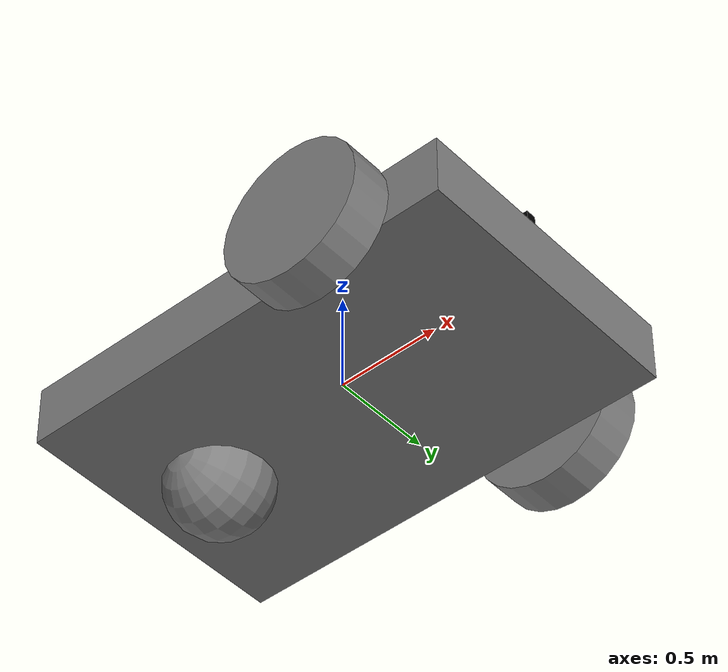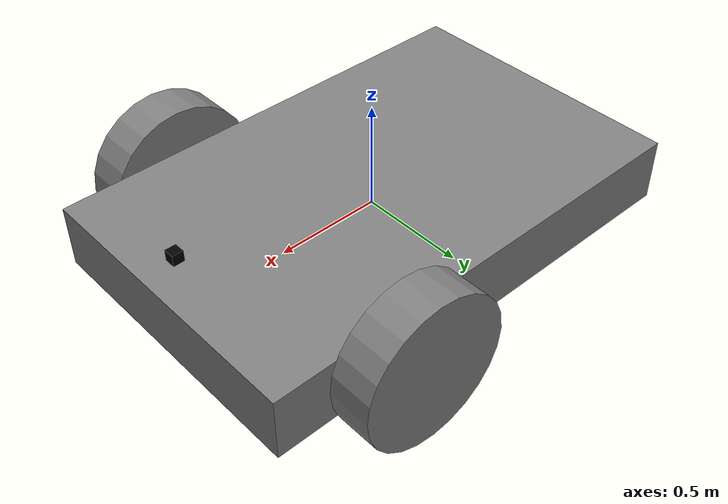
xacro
<?xml version="1.0"?>
<robot name="robot_car" xmlns:xacro="http://www.ros.org/wiki/xacro">
    <xacro:property name="box_x" value="2.2"/>
    <xacro:property name="box_y" value="1.4"/>
    <xacro:property name="box_z" value="0.3"/>
    <xacro:property name="box_M" value="1.1"/>
    <xacro:property name="wheel_steer_r" value="0.15"/>
    <xacro:property name="wheel_steer_l" value="0.05"/>
    <xacro:property name="wheel_r" value="0.35"/>
    <xacro:property name="wheel_l" value="0.2"/>
    <xacro:property name="wheel_M" value="0.8"/>
    <xacro:property name="sphere_r" value="0.25"/>
    <xacro:property name="sphere_M" value="1.0"/>
    <xacro:property name="I_sphere" value="${(2.0/5.0)*sphere_M*sphere_r*sphere_r}"/>

    <xacro:property name="ixx" value="${(1/12.0)*box_M*(box_y*box_y + box_z*box_z)}"/>
    <xacro:property name="iyy" value="${(1/12.0)*box_M*(box_x*box_x + box_z*box_z)}"/>
    <xacro:property name="izz" value="${(1/12.0)*box_M*(box_x*box_x + box_y*box_y)}"/>

    <link name="base_link">
        <visual>
            <geometry>
                <box size="${box_x} ${box_y} ${box_z}"/>
            </geometry>
            <origin xyz="0 0 0" rpy="0 0 0"/>
            <material name="gray">
                <color rgba="0.5 0.5 0.5 1"/>
            </material>
        </visual>
        <collision>
            <geometry>
                <box size="1.9 ${box_y} ${box_z}"/>
            </geometry>
            <origin xyz="0 0 0" rpy="0 0 0"/>
              <surface>
                <friction>
                    <ode>
                        <mu>1.0</mu>
                        <mu2>1.0</mu2>
                    </ode>
                </friction>
            </surface>
        </collision>
        <inertial>
            <mass value="${box_M}"/>
            <inertia ixx="${ixx}" iyy="${iyy}" izz="${izz}" ixy="0.0" ixz="0.0" iyz="0.0"/>
            <origin xyz="0 0 0" rpy="0 0 0"/>
        </inertial>

    </link>

     <link name="left_wheel_steer">
        <visual>
            <geometry>
                <cylinder radius="${wheel_steer_r}" length="${wheel_steer_l}"/>
            </geometry>
            <origin xyz="0 0 0" rpy="1.5708 0 0"/>
            <material name="gray">
                <color rgba="0.5 0.5 0.5 1"/>
            </material>
        </visual>
        <collision>
            <geometry>
                <cylinder radius="${wheel_steer_r}" length="${wheel_steer_l}"/>
            </geometry>
            <surface>
                <friction>
                    <ode>
                        <mu>1</mu>
                        <mu2>1</mu2>
                    </ode>
                </friction>
            </surface>
            <origin xyz="0 0 0" rpy="1.5708 0 0"/>
        </collision>
        <inertial>
            <mass value="${wheel_M}"/>
            <inertia
            ixx="${(1.0/12.0)*wheel_M*(3*wheel_steer_r*wheel_steer_r + wheel_steer_l*wheel_steer_l)}"
            iyy="${(1.0/12.0)*wheel_M*(3*wheel_steer_r*wheel_steer_r + wheel_steer_l*wheel_steer_l)}"
            izz="${0.5*wheel_M*wheel_steer_r*wheel_steer_r}"
            ixy="0" ixz="0" iyz="0"/>
            <origin xyz="0 0 0" rpy="0 0 0"/>
        </inertial>
    </link>

    <link name="right_wheel_steer">
        <visual>
            <geometry>
                <cylinder radius="${wheel_steer_r}" length="${wheel_steer_l}"/>
            </geometry>
            <origin xyz="0 0 0" rpy="1.5708 0 0"/>
            <material name="gray">
                <color rgba="0.5 0.5 0.5 1"/>
            </material>
        </visual>
        <collision>
            <geometry>
                <cylinder radius="${wheel_steer_r}" length="${wheel_steer_l}"/>
            </geometry>
            <surface>
                <friction>
                    <ode>
                        <mu>1</mu>
                        <mu2>1</mu2>
                    </ode>
                </friction>
            </surface>
            <origin xyz="0 0 0" rpy="1.5708 0 0"/>
        </collision>
        <inertial>
            <mass value="${wheel_M}"/>
            <inertia
            ixx="${(1.0/12.0)*wheel_M*(3*wheel_steer_r*wheel_steer_r + wheel_steer_l*wheel_steer_l)}"
            iyy="${(1.0/12.0)*wheel_M*(3*wheel_steer_r*wheel_steer_r + wheel_steer_l*wheel_steer_l)}"
            izz="${0.5*wheel_M*wheel_steer_r*wheel_steer_r}"
            ixy="0" ixz="0" iyz="0"/>
            <origin xyz="0 0 0" rpy="0 0 0"/>
        </inertial>
    </link>

    <link name="left_wheel">
        <visual>
            <geometry>
                <cylinder radius="${wheel_r}" length="${wheel_l}"/>
            </geometry>
            <origin xyz="0 0 0" rpy="1.5708 0 0"/>
            <material name="gray">
                <color rgba="0.5 0.5 0.5 1"/>
            </material>
        </visual>
        <collision>
            <geometry>
                <cylinder radius="${wheel_r}" length="${wheel_l}"/>
            </geometry>
            <surface>
                <friction>
                    <ode>
                        <mu>1</mu>
                        <mu2>1</mu2>
                    </ode>
                </friction>
            </surface>
            <origin xyz="0 0 0" rpy="1.5708 0 0"/>
        </collision>
        <inertial>
            <mass value="${wheel_M}"/>
            <inertia
            ixx="${(1.0/12.0)*wheel_M*(3*wheel_r*wheel_r + wheel_l*wheel_l)}"
            iyy="${(1.0/12.0)*wheel_M*(3*wheel_r*wheel_r + wheel_l*wheel_l)}"
            izz="${0.5*wheel_M*wheel_r*wheel_r}"
            ixy="0" ixz="0" iyz="0"/>
            <origin xyz="0 0 0" rpy="0 0 0"/>
        </inertial>
    </link>

    <link name="right_wheel">
        <visual>
            <geometry>
                <cylinder radius="${wheel_r}" length="${wheel_l}"/>
            </geometry>
            <origin xyz="0 0 0" rpy="1.5708 0 0"/>
            <material name="gray">
                <color rgba="0.5 0.5 0.5 1"/>
            </material>
        </visual>
        <collision>
            <geometry>
                <cylinder radius="${wheel_r}" length="${wheel_l}"/>
            </geometry>
            <surface>
                <friction>
                    <ode>
                        <mu>1</mu>
                        <mu2>1</mu2>
                    </ode>
                </friction>
            </surface>
            <origin xyz="0 0 0" rpy="1.5708 0 0"/>
        </collision>
        <inertial>
            <mass value="${wheel_M}"/>
            <inertia
            ixx="${(1.0/12.0)*wheel_M*(3*wheel_r*wheel_r + wheel_l*wheel_l)}"
            iyy="${(1.0/12.0)*wheel_M*(3*wheel_r*wheel_r + wheel_l*wheel_l)}"
            izz="${0.5*wheel_M*wheel_r*wheel_r}"
            ixy="0" ixz="0" iyz="0"/>
            <origin xyz="0 0 0" rpy="0 0 0"/>
        </inertial>
    </link>

    <link name="sphere">
        <visual>
            <geometry>
                <sphere radius="${sphere_r}"/>
            </geometry>
            <origin xyz="0 0 0" rpy="1.5708 0 0"/>
            <material name="gray">
                <color rgba="0.5 0.5 0.5 1"/>
            </material>
        </visual>
        <collision>
            <geometry>
                <sphere radius="${sphere_r}"/>
            </geometry>
            <surface>
                <friction>
                    <ode>
                        <mu>1.0</mu>
                        <mu2>1.0</mu2>
                    </ode>
                </friction>
            </surface>
            <origin xyz="0 0 0" rpy="1.5708 0 0"/>
        </collision>
        <inertial>
        <mass value="${sphere_M}"/>
        <inertia
            ixx="${I_sphere}"
            iyy="${I_sphere}"
            izz="${I_sphere}"
            ixy="0" ixz="0" iyz="0"/>
        <origin xyz="0 0 0" rpy="0 0 0"/>
        </inertial>

    </link>

    <!-- Depth camera link -->
    <link name="depth_camera_link">
    <visual>
        <geometry>
        <box size="0.05 0.05 0.05"/>  <!-- camera size -->
        </geometry>
        <material name="black">
        <color rgba="0.0 0.0 0.0 1.0"/>
        </material>
    </visual>
    <inertial>
        <mass value="0.1"/>
        <origin xyz="0 0 0" rpy="0 0 0"/>
        <inertia ixx="1e-5" iyy="1e-5" izz="1e-5" ixy="0" ixz="0" iyz="0"/>
    </inertial>
    </link>

    <joint name="left_body_steer" type="revolute">
        <parent link="base_link"/>
        <child link="left_wheel_steer"/>
        <origin xyz="0.5 0.8 0.0" rpy="0 0 0"/>
        <axis xyz="0 0 1"/>
        <limit lower="-1.57" upper="1.57" effort="1" velocity="1"/>
    </joint>

    <joint name="right_body_steer" type="revolute">
        <parent link="base_link"/>
        <child link="right_wheel_steer"/>
        <origin xyz="0.5 -0.8 0.0" rpy="0 0 0"/>
        <axis xyz="0 0 1"/>
        <limit lower="-1.57" upper="1.57" effort="1" velocity="1"/>
    </joint>

    <joint name="left_body_wheel" type="continuous">
        <parent link="left_wheel_steer"/>
        <child link="left_wheel"/>
        <origin xyz="0 0 0" rpy="0 0 0"/>
        <axis xyz="0 1 0"/>
        <limit effort="1" velocity="5"/>
    </joint>

    <joint name="right_body_wheel" type="continuous">
        <parent link="right_wheel_steer"/>
        <child link="right_wheel"/>
        <origin xyz="0.0 0.0 0.0" rpy="0 0 0"/>
        <axis xyz="0 1 0"/>
        <limit effort="1" velocity="5"/>
    </joint>

    <joint name="body_sphere" type="continuous">
        <parent link="base_link"/>
        <child link="sphere"/>
        <origin xyz="-0.7 0 -0.15" rpy="0 0 0"/>
        <axis xyz="0 1 0"/>
        <limit effort="10" velocity="10"/>
    </joint>

    <!-- Fixed joint attaching the camera to the robot -->
    <joint name="depth_camera_joint" type="fixed">
        <parent link="base_link"/>  <!-- or wherever you want to mount it -->
        <child link="depth_camera_link"/>
        <origin xyz="1.0 0 0.3" rpy="0 0 0"/> <!-- Adjust position -->
    </joint>

    <ros2_control name="GazeboSystem" type="system">
        <hardware>
            <plugin>gazebo_ros2_control/GazeboSystem</plugin>
        </hardware>

        <joint name="left_body_steer">
            <command_interface name="position"/>
            <state_interface name="position"/>
        </joint>

        <joint name="right_body_steer">
            <command_interface name="position"/>
            <state_interface name="position"/>
        </joint>

        <joint name="body_sphere">
            <command_interface name="velocity"/>
            <state_interface name="velocity"/>
        </joint>
    </ros2_control>

    <gazebo>
        <plugin name="gazebo_ros2_control" filename="libgazebo_ros2_control.so">
            <parameters>/home/song/ros2_ws/src/follower/ros2_controller.yaml</parameters>
        </plugin>
    </gazebo>

    <gazebo reference="depth_camera_link">
        <sensor name="depth_camera" type="depth">
            <always_on>true</always_on>
            <update_rate>30.0</update_rate>
            <visualize>true</visualize>
            <camera>
            <horizontal_fov>1.047</horizontal_fov>  <!-- ~60 degrees -->
                <image>
                    <width>640</width>
                    <height>480</height>
                    <format>R8G8B8</format>
                </image>
                <clip>
                    <near>0.1</near>
                    <far>10.0</far>
                </clip>
            </camera>
            <plugin name="gazebo_ros_depth_camera" filename="libgazebo_ros_camera.so">
                <ros>
                    <namespace>/</namespace>
                </ros>
                <camera_name>depth_camera</camera_name>
                <frame_name>depth_camera_link</frame_name>
                <image_topic_name>image_raw</image_topic_name>
                <depth_image_topic_name>depth/image_raw</depth_image_topic_name>
                <camera_info_topic_name>camera_info</camera_info_topic_name>
            </plugin>
        </sensor>
    </gazebo>

</robot>
